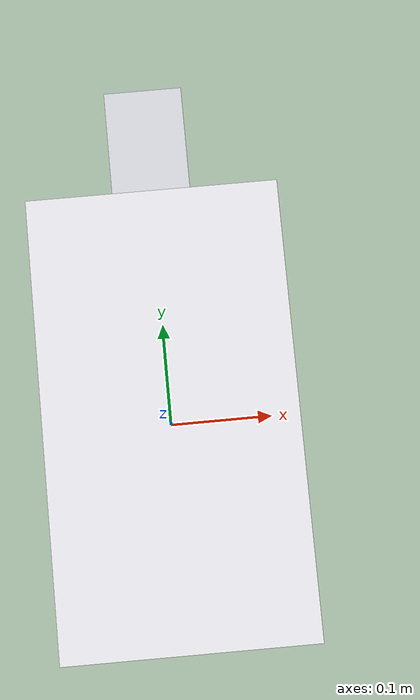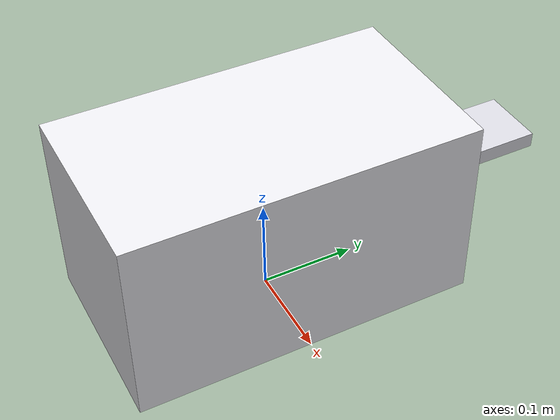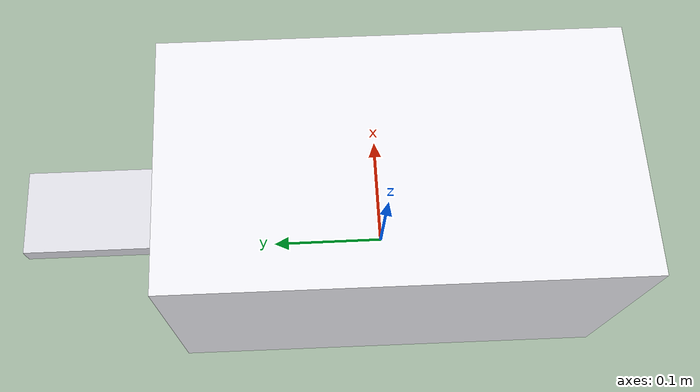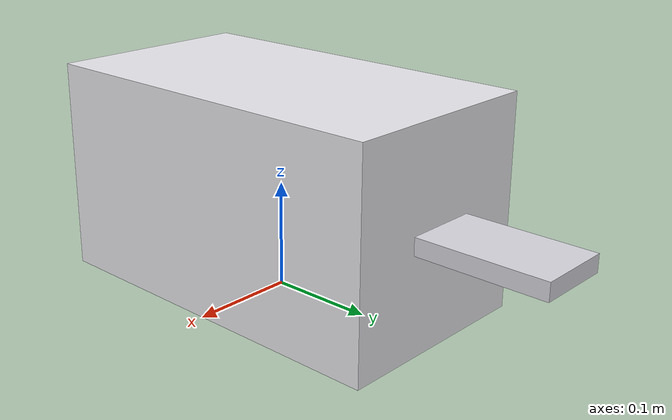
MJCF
<?xml version="1.0" encoding="utf-8"?>
<mujoco model="real_lab_tohoku_university_mri">
  <compiler angle="radian" autolimits="true"/>
  <default>
    <default class="body"><geom contype="1" conaffinity="1"/></default>
  </default>
  <worldbody>
    <body name="base">
      <geom type="box" size="0.1 0.18 0.1" pos="0 0 0.1" rgba="0.92 0.92 0.94 1" class="body"/>
      <geom type="cylinder" size="0.06 0.1" pos="0 0 0.1" rgba="0.15 0.15 0.17 1" class="body" quat="0.707 0.707 0 0"/>
      <body name="patient_table" pos="0.0 0.18 0.1">
        <joint name="patient_table_joint" type="slide" axis="0 1 0" range="-0.05 0.1" damping="1.0" frictionloss="0.4"/>
  <geom type="box" size="0.035 0.12 0.008" pos="0 0 0" rgba="0.85 0.85 0.88 1" class="body"/>
      </body>
    </body>
  </worldbody>
</mujoco>
